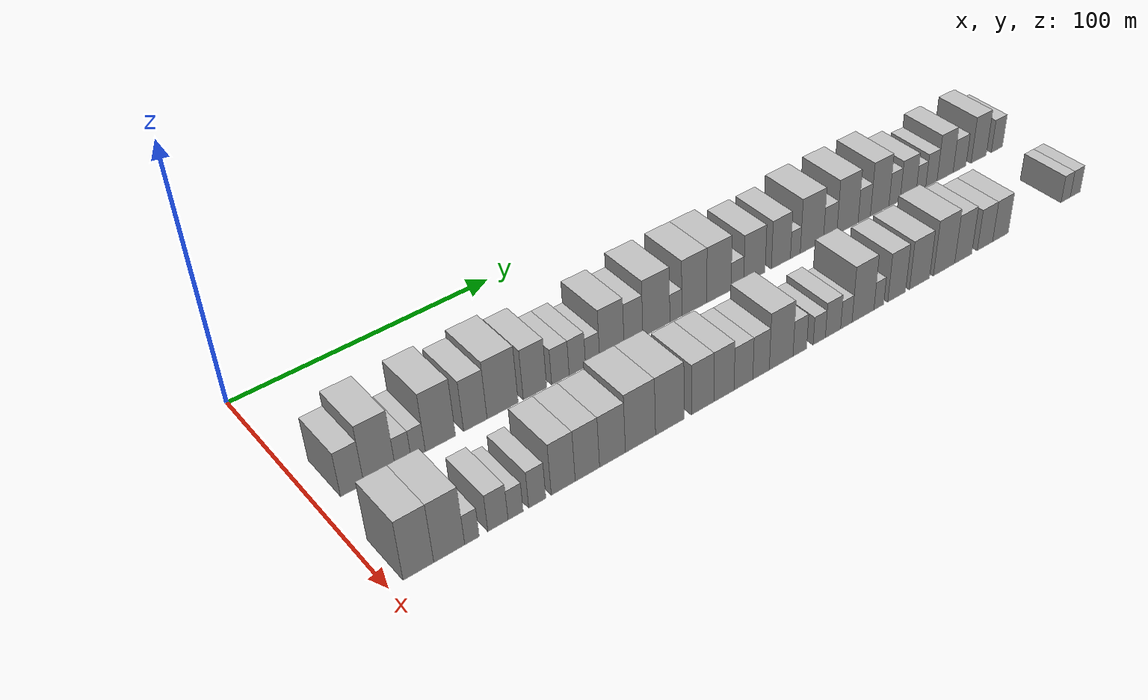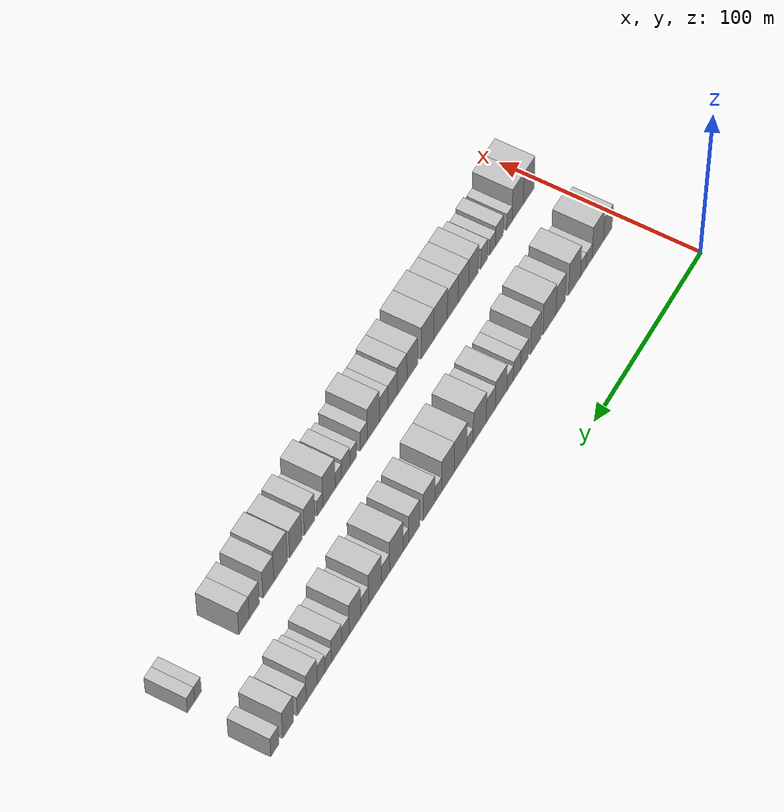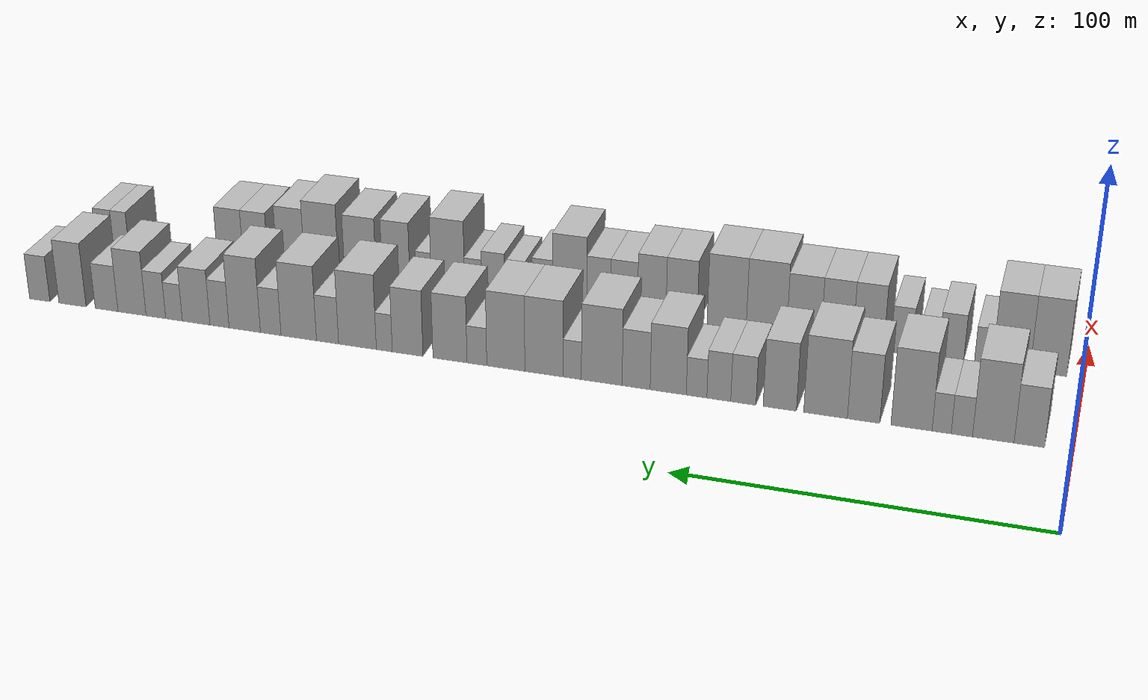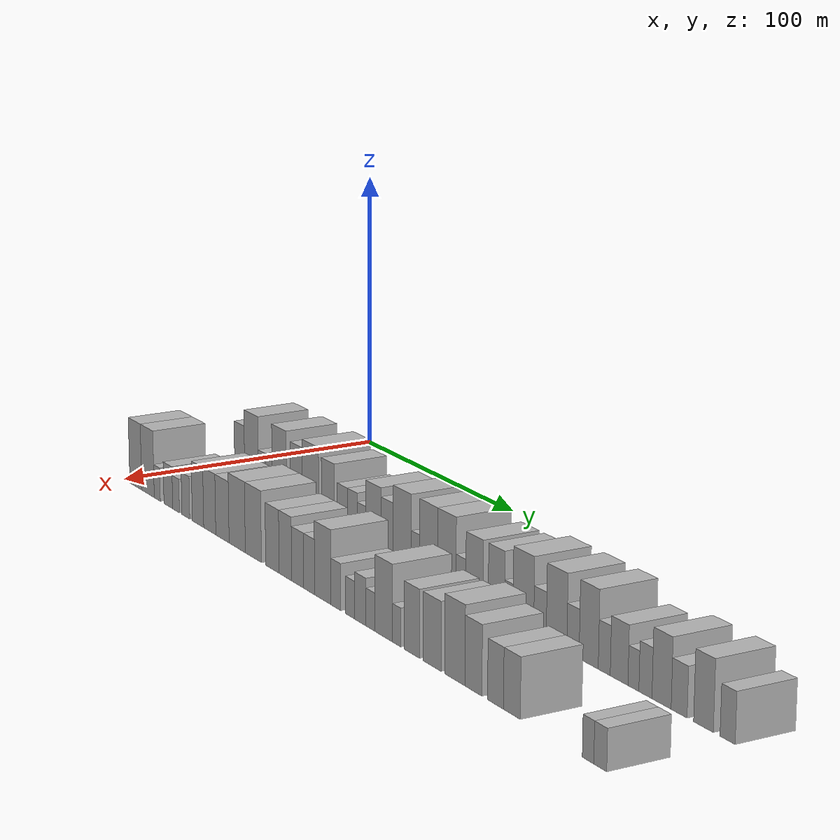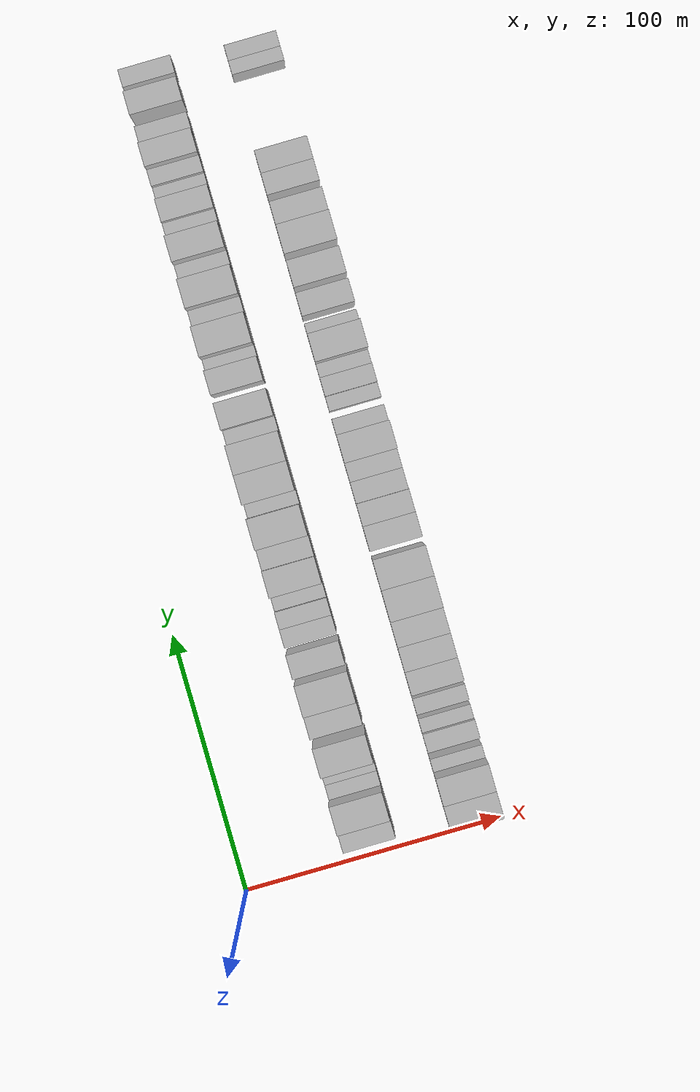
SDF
<sdf version="1.6">
 <world name="default">
  <model name="building_35">
   <static>1</static>
   <pose>50.0000 11.3959 0 0.000000 0.000000 0.000000</pose>
   <link name="link">
    <pose>0 0 9.00 0 0 0</pose>
    <collision name="collision"><geometry><box><size>20.0000 8.0078 18.0000</size></box></geometry></collision>
    <visual name="visual">
     <cast_shadows>0</cast_shadows>
     <geometry><box><size>20.0000 8.0078 18.0000</size></box></geometry>
     <material>
      <script>
       <uri>model://HANNAS_wall/materials/scripts</uri>
       <uri>model://HANNAS_wall/materials/textures</uri>
       <name>vrc/HANNAS_wall</name>
      </script>
     </material>
    </visual>
   </link>
  </model>
  <model name="building_36">
   <static>1</static>
   <pose>50.0000 20.8704 0 0.000000 0.000000 0.000000</pose>
   <link name="link">
    <pose>0 0 12.00 0 0 0</pose>
    <collision name="collision"><geometry><box><size>20.0000 10.9411 24.0000</size></box></geometry></collision>
    <visual name="visual">
     <cast_shadows>0</cast_shadows>
     <geometry><box><size>20.0000 10.9411 24.0000</size></box></geometry>
     <material>
      <script>
       <uri>model://HANNAS_wall/materials/scripts</uri>
       <uri>model://HANNAS_wall/materials/textures</uri>
       <name>vrc/HANNAS_wall</name>
      </script>
     </material>
    </visual>
   </link>
  </model>
  <model name="building_37">
   <static>1</static>
   <pose>50.0000 29.1648 0 0.000000 0.000000 0.000000</pose>
   <link name="link">
    <pose>0 0 6.00 0 0 0</pose>
    <collision name="collision"><geometry><box><size>20.0000 5.6477 12.0000</size></box></geometry></collision>
    <visual name="visual">
     <cast_shadows>0</cast_shadows>
     <geometry><box><size>20.0000 5.6477 12.0000</size></box></geometry>
     <material>
      <script>
       <uri>model://HANNAS_wall/materials/scripts</uri>
       <uri>model://HANNAS_wall/materials/textures</uri>
       <name>vrc/HANNAS_wall</name>
      </script>
     </material>
    </visual>
   </link>
  </model>
  <model name="building_38">
   <static>1</static>
   <pose>50.0000 34.5339 0 0.000000 0.000000 0.000000</pose>
   <link name="link">
    <pose>0 0 6.00 0 0 0</pose>
    <collision name="collision"><geometry><box><size>20.0000 5.0903 12.0000</size></box></geometry></collision>
    <visual name="visual">
     <cast_shadows>0</cast_shadows>
     <geometry><box><size>20.0000 5.0903 12.0000</size></box></geometry>
     <material>
      <script>
       <uri>model://HANNAS_wall/materials/scripts</uri>
       <uri>model://HANNAS_wall/materials/textures</uri>
       <name>vrc/HANNAS_wall</name>
      </script>
     </material>
    </visual>
   </link>
  </model>
  <model name="building_39">
   <static>1</static>
   <pose>50.0000 42.5966 0 0.000000 0.000000 0.000000</pose>
   <link name="link">
    <pose>0 0 12.00 0 0 0</pose>
    <collision name="collision"><geometry><box><size>20.0000 11.0351 24.0000</size></box></geometry></collision>
    <visual name="visual">
     <cast_shadows>0</cast_shadows>
     <geometry><box><size>20.0000 11.0351 24.0000</size></box></geometry>
     <material>
      <script>
       <uri>model://HANNAS_wall/materials/scripts</uri>
       <uri>model://HANNAS_wall/materials/textures</uri>
       <name>vrc/HANNAS_wall</name>
      </script>
     </material>
    </visual>
   </link>
  </model>
  <model name="building_40">
   <static>1</static>
   <pose>50.0000 55.5203 0 0.000000 0.000000 0.000000</pose>
   <link name="link">
    <pose>0 0 10.50 0 0 0</pose>
    <collision name="collision"><geometry><box><size>20.0000 8.8122 21.0000</size></box></geometry></collision>
    <visual name="visual">
     <cast_shadows>0</cast_shadows>
     <geometry><box><size>20.0000 8.8122 21.0000</size></box></geometry>
     <material>
      <script>
       <uri>model://HANNAS_wall/materials/scripts</uri>
       <uri>model://HANNAS_wall/materials/textures</uri>
       <name>vrc/HANNAS_wall</name>
      </script>
     </material>
    </visual>
   </link>
  </model>
  <model name="building_41">
   <static>1</static>
   <pose>50.0000 65.8986 0 0.000000 0.000000 0.000000</pose>
   <link name="link">
    <pose>0 0 12.00 0 0 0</pose>
    <collision name="collision"><geometry><box><size>20.0000 11.9445 24.0000</size></box></geometry></collision>
    <visual name="visual">
     <cast_shadows>0</cast_shadows>
     <geometry><box><size>20.0000 11.9445 24.0000</size></box></geometry>
     <material>
      <script>
       <uri>model://HANNAS_wall/materials/scripts</uri>
       <uri>model://HANNAS_wall/materials/textures</uri>
       <name>vrc/HANNAS_wall</name>
      </script>
     </material>
    </visual>
   </link>
  </model>
  <model name="building_42">
   <static>1</static>
   <pose>50.0000 78.4836 0 0.000000 0.000000 0.000000</pose>
   <link name="link">
    <pose>0 0 10.50 0 0 0</pose>
    <collision name="collision"><geometry><box><size>20.0000 9.2255 21.0000</size></box></geometry></collision>
    <visual name="visual">
     <cast_shadows>0</cast_shadows>
     <geometry><box><size>20.0000 9.2255 21.0000</size></box></geometry>
     <material>
      <script>
       <uri>model://HANNAS_wall/materials/scripts</uri>
       <uri>model://HANNAS_wall/materials/textures</uri>
       <name>vrc/HANNAS_wall</name>
      </script>
     </material>
    </visual>
   </link>
  </model>
  <model name="building_43">
   <static>1</static>
   <pose>50.0000 88.6178 0 0.000000 0.000000 0.000000</pose>
   <link name="link">
    <pose>0 0 7.50 0 0 0</pose>
    <collision name="collision"><geometry><box><size>20.0000 7.0429 15.0000</size></box></geometry></collision>
    <visual name="visual">
     <cast_shadows>0</cast_shadows>
     <geometry><box><size>20.0000 7.0429 15.0000</size></box></geometry>
     <material>
      <script>
       <uri>model://HANNAS_wall/materials/scripts</uri>
       <uri>model://HANNAS_wall/materials/textures</uri>
       <name>vrc/HANNAS_wall</name>
      </script>
     </material>
    </visual>
   </link>
  </model>
  <model name="building_44">
   <static>1</static>
   <pose>50.0000 95.4951 0 0.000000 0.000000 0.000000</pose>
   <link name="link">
    <pose>0 0 7.50 0 0 0</pose>
    <collision name="collision"><geometry><box><size>20.0000 6.7116 15.0000</size></box></geometry></collision>
    <visual name="visual">
     <cast_shadows>0</cast_shadows>
     <geometry><box><size>20.0000 6.7116 15.0000</size></box></geometry>
     <material>
      <script>
       <uri>model://HANNAS_wall/materials/scripts</uri>
       <uri>model://HANNAS_wall/materials/textures</uri>
       <name>vrc/HANNAS_wall</name>
      </script>
     </material>
    </visual>
   </link>
  </model>
  <model name="building_45">
   <static>1</static>
   <pose>50.0000 101.7632 0 0.000000 0.000000 0.000000</pose>
   <link name="link">
    <pose>0 0 6.00 0 0 0</pose>
    <collision name="collision"><geometry><box><size>20.0000 5.8247 12.0000</size></box></geometry></collision>
    <visual name="visual">
     <cast_shadows>0</cast_shadows>
     <geometry><box><size>20.0000 5.8247 12.0000</size></box></geometry>
     <material>
      <script>
       <uri>model://HANNAS_wall/materials/scripts</uri>
       <uri>model://HANNAS_wall/materials/textures</uri>
       <name>vrc/HANNAS_wall</name>
      </script>
     </material>
    </visual>
   </link>
  </model>
  <model name="building_46">
   <static>1</static>
   <pose>50.0000 109.8124 0 0.000000 0.000000 0.000000</pose>
   <link name="link">
    <pose>0 0 10.50 0 0 0</pose>
    <collision name="collision"><geometry><box><size>20.0000 10.2737 21.0000</size></box></geometry></collision>
    <visual name="visual">
     <cast_shadows>0</cast_shadows>
     <geometry><box><size>20.0000 10.2737 21.0000</size></box></geometry>
     <material>
      <script>
       <uri>model://HANNAS_wall/materials/scripts</uri>
       <uri>model://HANNAS_wall/materials/textures</uri>
       <name>vrc/HANNAS_wall</name>
      </script>
     </material>
    </visual>
   </link>
  </model>
  <model name="building_47">
   <static>1</static>
   <pose>50.0000 118.9649 0 0.000000 0.000000 0.000000</pose>
   <link name="link">
    <pose>0 0 9.00 0 0 0</pose>
    <collision name="collision"><geometry><box><size>20.0000 8.0313 18.0000</size></box></geometry></collision>
    <visual name="visual">
     <cast_shadows>0</cast_shadows>
     <geometry><box><size>20.0000 8.0313 18.0000</size></box></geometry>
     <material>
      <script>
       <uri>model://HANNAS_wall/materials/scripts</uri>
       <uri>model://HANNAS_wall/materials/textures</uri>
       <name>vrc/HANNAS_wall</name>
      </script>
     </material>
    </visual>
   </link>
  </model>
  <model name="building_48">
   <static>1</static>
   <pose>50.0000 128.8710 0 0.000000 0.000000 0.000000</pose>
   <link name="link">
    <pose>0 0 12.00 0 0 0</pose>
    <collision name="collision"><geometry><box><size>20.0000 11.7810 24.0000</size></box></geometry></collision>
    <visual name="visual">
     <cast_shadows>0</cast_shadows>
     <geometry><box><size>20.0000 11.7810 24.0000</size></box></geometry>
     <material>
      <script>
       <uri>model://HANNAS_wall/materials/scripts</uri>
       <uri>model://HANNAS_wall/materials/textures</uri>
       <name>vrc/HANNAS_wall</name>
      </script>
     </material>
    </visual>
   </link>
  </model>
  <model name="building_49">
   <static>1</static>
   <pose>50.0000 137.4100 0 0.000000 0.000000 0.000000</pose>
   <link name="link">
    <pose>0 0 6.00 0 0 0</pose>
    <collision name="collision"><geometry><box><size>20.0000 5.2969 12.0000</size></box></geometry></collision>
    <visual name="visual">
     <cast_shadows>0</cast_shadows>
     <geometry><box><size>20.0000 5.2969 12.0000</size></box></geometry>
     <material>
      <script>
       <uri>model://HANNAS_wall/materials/scripts</uri>
       <uri>model://HANNAS_wall/materials/textures</uri>
       <name>vrc/HANNAS_wall</name>
      </script>
     </material>
    </visual>
   </link>
  </model>
  <model name="building_50">
   <static>1</static>
   <pose>50.0000 145.6631 0 0.000000 0.000000 0.000000</pose>
   <link name="link">
    <pose>0 0 12.00 0 0 0</pose>
    <collision name="collision"><geometry><box><size>20.0000 11.2093 24.0000</size></box></geometry></collision>
    <visual name="visual">
     <cast_shadows>0</cast_shadows>
     <geometry><box><size>20.0000 11.2093 24.0000</size></box></geometry>
     <material>
      <script>
       <uri>model://HANNAS_wall/materials/scripts</uri>
       <uri>model://HANNAS_wall/materials/textures</uri>
       <name>vrc/HANNAS_wall</name>
      </script>
     </material>
    </visual>
   </link>
  </model>
  <model name="building_51">
   <static>1</static>
   <pose>50.0000 156.8992 0 0.000000 0.000000 0.000000</pose>
   <link name="link">
    <pose>0 0 12.00 0 0 0</pose>
    <collision name="collision"><geometry><box><size>20.0000 11.2628 24.0000</size></box></geometry></collision>
    <visual name="visual">
     <cast_shadows>0</cast_shadows>
     <geometry><box><size>20.0000 11.2628 24.0000</size></box></geometry>
     <material>
      <script>
       <uri>model://HANNAS_wall/materials/scripts</uri>
       <uri>model://HANNAS_wall/materials/textures</uri>
       <name>vrc/HANNAS_wall</name>
      </script>
     </material>
    </visual>
   </link>
  </model>
  <model name="building_52">
   <static>1</static>
   <pose>50.0000 165.4799 0 0.000000 0.000000 0.000000</pose>
   <link name="link">
    <pose>0 0 6.00 0 0 0</pose>
    <collision name="collision"><geometry><box><size>20.0000 5.8987 12.0000</size></box></geometry></collision>
    <visual name="visual">
     <cast_shadows>0</cast_shadows>
     <geometry><box><size>20.0000 5.8987 12.0000</size></box></geometry>
     <material>
      <script>
       <uri>model://HANNAS_wall/materials/scripts</uri>
       <uri>model://HANNAS_wall/materials/textures</uri>
       <name>vrc/HANNAS_wall</name>
      </script>
     </material>
    </visual>
   </link>
  </model>
  <model name="building_53">
   <static>1</static>
   <pose>50.0000 173.5300 0 0.000000 0.000000 0.000000</pose>
   <link name="link">
    <pose>0 0 10.50 0 0 0</pose>
    <collision name="collision"><geometry><box><size>20.0000 10.2016 21.0000</size></box></geometry></collision>
    <visual name="visual">
     <cast_shadows>0</cast_shadows>
     <geometry><box><size>20.0000 10.2016 21.0000</size></box></geometry>
     <material>
      <script>
       <uri>model://HANNAS_wall/materials/scripts</uri>
       <uri>model://HANNAS_wall/materials/textures</uri>
       <name>vrc/HANNAS_wall</name>
      </script>
     </material>
    </visual>
   </link>
  </model>
  <model name="building_54">
   <static>1</static>
   <pose>50.0000 186.2834 0 0.000000 0.000000 0.000000</pose>
   <link name="link">
    <pose>0 0 10.50 0 0 0</pose>
    <collision name="collision"><geometry><box><size>20.0000 9.3051 21.0000</size></box></geometry></collision>
    <visual name="visual">
     <cast_shadows>0</cast_shadows>
     <geometry><box><size>20.0000 9.3051 21.0000</size></box></geometry>
     <material>
      <script>
       <uri>model://HANNAS_wall/materials/scripts</uri>
       <uri>model://HANNAS_wall/materials/textures</uri>
       <name>vrc/HANNAS_wall</name>
      </script>
     </material>
    </visual>
   </link>
  </model>
  <model name="building_55">
   <static>1</static>
   <pose>50.0000 193.3706 0 0.000000 0.000000 0.000000</pose>
   <link name="link">
    <pose>0 0 6.00 0 0 0</pose>
    <collision name="collision"><geometry><box><size>20.0000 4.8694 12.0000</size></box></geometry></collision>
    <visual name="visual">
     <cast_shadows>0</cast_shadows>
     <geometry><box><size>20.0000 4.8694 12.0000</size></box></geometry>
     <material>
      <script>
       <uri>model://HANNAS_wall/materials/scripts</uri>
       <uri>model://HANNAS_wall/materials/textures</uri>
       <name>vrc/HANNAS_wall</name>
      </script>
     </material>
    </visual>
   </link>
  </model>
  <model name="building_56">
   <static>1</static>
   <pose>50.0000 201.5925 0 0.000000 0.000000 0.000000</pose>
   <link name="link">
    <pose>0 0 12.00 0 0 0</pose>
    <collision name="collision"><geometry><box><size>20.0000 11.5745 24.0000</size></box></geometry></collision>
    <visual name="visual">
     <cast_shadows>0</cast_shadows>
     <geometry><box><size>20.0000 11.5745 24.0000</size></box></geometry>
     <material>
      <script>
       <uri>model://HANNAS_wall/materials/scripts</uri>
       <uri>model://HANNAS_wall/materials/textures</uri>
       <name>vrc/HANNAS_wall</name>
      </script>
     </material>
    </visual>
   </link>
  </model>
  <model name="building_57">
   <static>1</static>
   <pose>50.0000 210.8056 0 0.000000 0.000000 0.000000</pose>
   <link name="link">
    <pose>0 0 7.50 0 0 0</pose>
    <collision name="collision"><geometry><box><size>20.0000 6.8518 15.0000</size></box></geometry></collision>
    <visual name="visual">
     <cast_shadows>0</cast_shadows>
     <geometry><box><size>20.0000 6.8518 15.0000</size></box></geometry>
     <material>
      <script>
       <uri>model://HANNAS_wall/materials/scripts</uri>
       <uri>model://HANNAS_wall/materials/textures</uri>
       <name>vrc/HANNAS_wall</name>
      </script>
     </material>
    </visual>
   </link>
  </model>
  <model name="building_58">
   <static>1</static>
   <pose>50.0000 219.7498 0 0.000000 0.000000 0.000000</pose>
   <link name="link">
    <pose>0 0 12.00 0 0 0</pose>
    <collision name="collision"><geometry><box><size>20.0000 11.0365 24.0000</size></box></geometry></collision>
    <visual name="visual">
     <cast_shadows>0</cast_shadows>
     <geometry><box><size>20.0000 11.0365 24.0000</size></box></geometry>
     <material>
      <script>
       <uri>model://HANNAS_wall/materials/scripts</uri>
       <uri>model://HANNAS_wall/materials/textures</uri>
       <name>vrc/HANNAS_wall</name>
      </script>
     </material>
    </visual>
   </link>
  </model>
  <model name="building_59">
   <static>1</static>
   <pose>50.0000 228.5095 0 0.000000 0.000000 0.000000</pose>
   <link name="link">
    <pose>0 0 7.50 0 0 0</pose>
    <collision name="collision"><geometry><box><size>20.0000 6.4829 15.0000</size></box></geometry></collision>
    <visual name="visual">
     <cast_shadows>0</cast_shadows>
     <geometry><box><size>20.0000 6.4829 15.0000</size></box></geometry>
     <material>
      <script>
       <uri>model://HANNAS_wall/materials/scripts</uri>
       <uri>model://HANNAS_wall/materials/textures</uri>
       <name>vrc/HANNAS_wall</name>
      </script>
     </material>
    </visual>
   </link>
  </model>
  <model name="building_60">
   <static>1</static>
   <pose>50.0000 236.6931 0 0.000000 0.000000 0.000000</pose>
   <link name="link">
    <pose>0 0 12.00 0 0 0</pose>
    <collision name="collision"><geometry><box><size>20.0000 9.8843 24.0000</size></box></geometry></collision>
    <visual name="visual">
     <cast_shadows>0</cast_shadows>
     <geometry><box><size>20.0000 9.8843 24.0000</size></box></geometry>
     <material>
      <script>
       <uri>model://HANNAS_wall/materials/scripts</uri>
       <uri>model://HANNAS_wall/materials/textures</uri>
       <name>vrc/HANNAS_wall</name>
      </script>
     </material>
    </visual>
   </link>
  </model>
  <model name="building_61">
   <static>1</static>
   <pose>50.0000 244.6765 0 0.000000 0.000000 0.000000</pose>
   <link name="link">
    <pose>0 0 7.50 0 0 0</pose>
    <collision name="collision"><geometry><box><size>20.0000 6.0823 15.0000</size></box></geometry></collision>
    <visual name="visual">
     <cast_shadows>0</cast_shadows>
     <geometry><box><size>20.0000 6.0823 15.0000</size></box></geometry>
     <material>
      <script>
       <uri>model://HANNAS_wall/materials/scripts</uri>
       <uri>model://HANNAS_wall/materials/textures</uri>
       <name>vrc/HANNAS_wall</name>
      </script>
     </material>
    </visual>
   </link>
  </model>
  <model name="building_62">
   <static>1</static>
   <pose>50.0000 252.1347 0 0.000000 0.000000 0.000000</pose>
   <link name="link">
    <pose>0 0 9.00 0 0 0</pose>
    <collision name="collision"><geometry><box><size>20.0000 8.8340 18.0000</size></box></geometry></collision>
    <visual name="visual">
     <cast_shadows>0</cast_shadows>
     <geometry><box><size>20.0000 8.8340 18.0000</size></box></geometry>
     <material>
      <script>
       <uri>model://HANNAS_wall/materials/scripts</uri>
       <uri>model://HANNAS_wall/materials/textures</uri>
       <name>vrc/HANNAS_wall</name>
      </script>
     </material>
    </visual>
   </link>
  </model>
  <model name="building_63">
   <static>1</static>
   <pose>50.0000 259.2328 0 0.000000 0.000000 0.000000</pose>
   <link name="link">
    <pose>0 0 6.00 0 0 0</pose>
    <collision name="collision"><geometry><box><size>20.0000 5.3622 12.0000</size></box></geometry></collision>
    <visual name="visual">
     <cast_shadows>0</cast_shadows>
     <geometry><box><size>20.0000 5.3622 12.0000</size></box></geometry>
     <material>
      <script>
       <uri>model://HANNAS_wall/materials/scripts</uri>
       <uri>model://HANNAS_wall/materials/textures</uri>
       <name>vrc/HANNAS_wall</name>
      </script>
     </material>
    </visual>
   </link>
  </model>
  <model name="building_64">
   <static>1</static>
   <pose>50.0000 265.0786 0 0.000000 0.000000 0.000000</pose>
   <link name="link">
    <pose>0 0 7.50 0 0 0</pose>
    <collision name="collision"><geometry><box><size>20.0000 6.3295 15.0000</size></box></geometry></collision>
    <visual name="visual">
     <cast_shadows>0</cast_shadows>
     <geometry><box><size>20.0000 6.3295 15.0000</size></box></geometry>
     <material>
      <script>
       <uri>model://HANNAS_wall/materials/scripts</uri>
       <uri>model://HANNAS_wall/materials/textures</uri>
       <name>vrc/HANNAS_wall</name>
      </script>
     </material>
    </visual>
   </link>
  </model>
  <model name="building_65">
   <static>1</static>
   <pose>50.0000 272.8066 0 0.000000 0.000000 0.000000</pose>
   <link name="link">
    <pose>0 0 10.50 0 0 0</pose>
    <collision name="collision"><geometry><box><size>20.0000 9.1265 21.0000</size></box></geometry></collision>
    <visual name="visual">
     <cast_shadows>0</cast_shadows>
     <geometry><box><size>20.0000 9.1265 21.0000</size></box></geometry>
     <material>
      <script>
       <uri>model://HANNAS_wall/materials/scripts</uri>
       <uri>model://HANNAS_wall/materials/textures</uri>
       <name>vrc/HANNAS_wall</name>
      </script>
     </material>
    </visual>
   </link>
  </model>
  <model name="building_66">
   <static>1</static>
   <pose>50.0000 281.0966 0 0.000000 0.000000 0.000000</pose>
   <link name="link">
    <pose>0 0 7.50 0 0 0</pose>
    <collision name="collision"><geometry><box><size>20.0000 7.4534 15.0000</size></box></geometry></collision>
    <visual name="visual">
     <cast_shadows>0</cast_shadows>
     <geometry><box><size>20.0000 7.4534 15.0000</size></box></geometry>
     <material>
      <script>
       <uri>model://HANNAS_wall/materials/scripts</uri>
       <uri>model://HANNAS_wall/materials/textures</uri>
       <name>vrc/HANNAS_wall</name>
      </script>
     </material>
    </visual>
   </link>
  </model>
  <model name="building_67">
   <static>1</static>
   <pose>50.0000 292.3017 0 0.000000 0.000000 0.000000</pose>
   <link name="link">
    <pose>0 0 10.50 0 0 0</pose>
    <collision name="collision"><geometry><box><size>20.0000 8.9567 21.0000</size></box></geometry></collision>
    <visual name="visual">
     <cast_shadows>0</cast_shadows>
     <geometry><box><size>20.0000 8.9567 21.0000</size></box></geometry>
     <material>
      <script>
       <uri>model://HANNAS_wall/materials/scripts</uri>
       <uri>model://HANNAS_wall/materials/textures</uri>
       <name>vrc/HANNAS_wall</name>
      </script>
     </material>
    </visual>
   </link>
  </model>
  <model name="building_68">
   <static>1</static>
   <pose>50.0000 303.1446 0 0.000000 0.000000 0.000000</pose>
   <link name="link">
    <pose>0 0 7.50 0 0 0</pose>
    <collision name="collision"><geometry><box><size>20.0000 6.7292 15.0000</size></box></geometry></collision>
    <visual name="visual">
     <cast_shadows>0</cast_shadows>
     <geometry><box><size>20.0000 6.7292 15.0000</size></box></geometry>
     <material>
      <script>
       <uri>model://HANNAS_wall/materials/scripts</uri>
       <uri>model://HANNAS_wall/materials/textures</uri>
       <name>vrc/HANNAS_wall</name>
      </script>
     </material>
    </visual>
   </link>
  </model>
  <model name="building_98">
   <static>1</static>
   <pose>90.0000 9.8645 0 0.000000 0.000000 0.000000</pose>
   <link name="link">
    <pose>0 0 12.00 0 0 0</pose>
    <collision name="collision"><geometry><box><size>20.0000 10.1987 24.0000</size></box></geometry></collision>
    <visual name="visual">
     <cast_shadows>0</cast_shadows>
     <geometry><box><size>20.0000 10.1987 24.0000</size></box></geometry>
     <material>
      <script>
       <uri>model://HANNAS_wall/materials/scripts</uri>
       <uri>model://HANNAS_wall/materials/textures</uri>
       <name>vrc/HANNAS_wall</name>
      </script>
     </material>
    </visual>
   </link>
  </model>
  <model name="building_99">
   <static>1</static>
   <pose>90.0000 20.2085 0 0.000000 0.000000 0.000000</pose>
   <link name="link">
    <pose>0 0 12.00 0 0 0</pose>
    <collision name="collision"><geometry><box><size>20.0000 10.4892 24.0000</size></box></geometry></collision>
    <visual name="visual">
     <cast_shadows>0</cast_shadows>
     <geometry><box><size>20.0000 10.4892 24.0000</size></box></geometry>
     <material>
      <script>
       <uri>model://HANNAS_wall/materials/scripts</uri>
       <uri>model://HANNAS_wall/materials/textures</uri>
       <name>vrc/HANNAS_wall</name>
      </script>
     </material>
    </visual>
   </link>
  </model>
  <model name="building_100">
   <static>1</static>
   <pose>90.0000 27.9639 0 0.000000 0.000000 0.000000</pose>
   <link name="link">
    <pose>0 0 6.00 0 0 0</pose>
    <collision name="collision"><geometry><box><size>20.0000 5.0216 12.0000</size></box></geometry></collision>
    <visual name="visual">
     <cast_shadows>0</cast_shadows>
     <geometry><box><size>20.0000 5.0216 12.0000</size></box></geometry>
     <material>
      <script>
       <uri>model://HANNAS_wall/materials/scripts</uri>
       <uri>model://HANNAS_wall/materials/textures</uri>
       <name>vrc/HANNAS_wall</name>
      </script>
     </material>
    </visual>
   </link>
  </model>
  <model name="building_101">
   <static>1</static>
   <pose>90.0000 37.0411 0 0.000000 0.000000 0.000000</pose>
   <link name="link">
    <pose>0 0 7.50 0 0 0</pose>
    <collision name="collision"><geometry><box><size>20.0000 7.1328 15.0000</size></box></geometry></collision>
    <visual name="visual">
     <cast_shadows>0</cast_shadows>
     <geometry><box><size>20.0000 7.1328 15.0000</size></box></geometry>
     <material>
      <script>
       <uri>model://HANNAS_wall/materials/scripts</uri>
       <uri>model://HANNAS_wall/materials/textures</uri>
       <name>vrc/HANNAS_wall</name>
      </script>
     </material>
    </visual>
   </link>
  </model>
  <model name="building_102">
   <static>1</static>
   <pose>90.0000 43.3104 0 0.000000 0.000000 0.000000</pose>
   <link name="link">
    <pose>0 0 6.00 0 0 0</pose>
    <collision name="collision"><geometry><box><size>20.0000 5.4059 12.0000</size></box></geometry></collision>
    <visual name="visual">
     <cast_shadows>0</cast_shadows>
     <geometry><box><size>20.0000 5.4059 12.0000</size></box></geometry>
     <material>
      <script>
       <uri>model://HANNAS_wall/materials/scripts</uri>
       <uri>model://HANNAS_wall/materials/textures</uri>
       <name>vrc/HANNAS_wall</name>
      </script>
     </material>
    </visual>
   </link>
  </model>
  <model name="building_103">
   <static>1</static>
   <pose>90.0000 51.1211 0 0.000000 0.000000 0.000000</pose>
   <link name="link">
    <pose>0 0 7.50 0 0 0</pose>
    <collision name="collision"><geometry><box><size>20.0000 6.2157 15.0000</size></box></geometry></collision>
    <visual name="visual">
     <cast_shadows>0</cast_shadows>
     <geometry><box><size>20.0000 6.2157 15.0000</size></box></geometry>
     <material>
      <script>
       <uri>model://HANNAS_wall/materials/scripts</uri>
       <uri>model://HANNAS_wall/materials/textures</uri>
       <name>vrc/HANNAS_wall</name>
      </script>
     </material>
    </visual>
   </link>
  </model>
  <model name="building_104">
   <static>1</static>
   <pose>90.0000 60.6790 0 0.000000 0.000000 0.000000</pose>
   <link name="link">
    <pose>0 0 10.50 0 0 0</pose>
    <collision name="collision"><geometry><box><size>20.0000 8.9001 21.0000</size></box></geometry></collision>
    <visual name="visual">
     <cast_shadows>0</cast_shadows>
     <geometry><box><size>20.0000 8.9001 21.0000</size></box></geometry>
     <material>
      <script>
       <uri>model://HANNAS_wall/materials/scripts</uri>
       <uri>model://HANNAS_wall/materials/textures</uri>
       <name>vrc/HANNAS_wall</name>
      </script>
     </material>
    </visual>
   </link>
  </model>
  <model name="building_105">
   <static>1</static>
   <pose>90.0000 69.7520 0 0.000000 0.000000 0.000000</pose>
   <link name="link">
    <pose>0 0 10.50 0 0 0</pose>
    <collision name="collision"><geometry><box><size>20.0000 9.2458 21.0000</size></box></geometry></collision>
    <visual name="visual">
     <cast_shadows>0</cast_shadows>
     <geometry><box><size>20.0000 9.2458 21.0000</size></box></geometry>
     <material>
      <script>
       <uri>model://HANNAS_wall/materials/scripts</uri>
       <uri>model://HANNAS_wall/materials/textures</uri>
       <name>vrc/HANNAS_wall</name>
      </script>
     </material>
    </visual>
   </link>
  </model>
  <model name="building_106">
   <static>1</static>
   <pose>90.0000 79.3833 0 0.000000 0.000000 0.000000</pose>
   <link name="link">
    <pose>0 0 10.50 0 0 0</pose>
    <collision name="collision"><geometry><box><size>20.0000 10.0169 21.0000</size></box></geometry></collision>
    <visual name="visual">
     <cast_shadows>0</cast_shadows>
     <geometry><box><size>20.0000 10.0169 21.0000</size></box></geometry>
     <material>
      <script>
       <uri>model://HANNAS_wall/materials/scripts</uri>
       <uri>model://HANNAS_wall/materials/textures</uri>
       <name>vrc/HANNAS_wall</name>
      </script>
     </material>
    </visual>
   </link>
  </model>
  <model name="building_107">
   <static>1</static>
   <pose>90.0000 90.3636 0 0.000000 0.000000 0.000000</pose>
   <link name="link">
    <pose>0 0 12.00 0 0 0</pose>
    <collision name="collision"><geometry><box><size>20.0000 11.9438 24.0000</size></box></geometry></collision>
    <visual name="visual">
     <cast_shadows>0</cast_shadows>
     <geometry><box><size>20.0000 11.9438 24.0000</size></box></geometry>
     <material>
      <script>
       <uri>model://HANNAS_wall/materials/scripts</uri>
       <uri>model://HANNAS_wall/materials/textures</uri>
       <name>vrc/HANNAS_wall</name>
      </script>
     </material>
    </visual>
   </link>
  </model>
  <model name="building_108">
   <static>1</static>
   <pose>90.0000 102.1360 0 0.000000 0.000000 0.000000</pose>
   <link name="link">
    <pose>0 0 12.00 0 0 0</pose>
    <collision name="collision"><geometry><box><size>20.0000 11.6009 24.0000</size></box></geometry></collision>
    <visual name="visual">
     <cast_shadows>0</cast_shadows>
     <geometry><box><size>20.0000 11.6009 24.0000</size></box></geometry>
     <material>
      <script>
       <uri>model://HANNAS_wall/materials/scripts</uri>
       <uri>model://HANNAS_wall/materials/textures</uri>
       <name>vrc/HANNAS_wall</name>
      </script>
     </material>
    </visual>
   </link>
  </model>
  <model name="building_109">
   <static>1</static>
   <pose>90.0000 115.6377 0 0.000000 0.000000 0.000000</pose>
   <link name="link">
    <pose>0 0 10.50 0 0 0</pose>
    <collision name="collision"><geometry><box><size>20.0000 9.4024 21.0000</size></box></geometry></collision>
    <visual name="visual">
     <cast_shadows>0</cast_shadows>
     <geometry><box><size>20.0000 9.4024 21.0000</size></box></geometry>
     <material>
      <script>
       <uri>model://HANNAS_wall/materials/scripts</uri>
       <uri>model://HANNAS_wall/materials/textures</uri>
       <name>vrc/HANNAS_wall</name>
      </script>
     </material>
    </visual>
   </link>
  </model>
  <model name="building_110">
   <static>1</static>
   <pose>90.0000 124.6527 0 0.000000 0.000000 0.000000</pose>
   <link name="link">
    <pose>0 0 10.50 0 0 0</pose>
    <collision name="collision"><geometry><box><size>20.0000 8.6277 21.0000</size></box></geometry></collision>
    <visual name="visual">
     <cast_shadows>0</cast_shadows>
     <geometry><box><size>20.0000 8.6277 21.0000</size></box></geometry>
     <material>
      <script>
       <uri>model://HANNAS_wall/materials/scripts</uri>
       <uri>model://HANNAS_wall/materials/textures</uri>
       <name>vrc/HANNAS_wall</name>
      </script>
     </material>
    </visual>
   </link>
  </model>
  <model name="building_111">
   <static>1</static>
   <pose>90.0000 133.0373 0 0.000000 0.000000 0.000000</pose>
   <link name="link">
    <pose>0 0 9.00 0 0 0</pose>
    <collision name="collision"><geometry><box><size>20.0000 8.1415 18.0000</size></box></geometry></collision>
    <visual name="visual">
     <cast_shadows>0</cast_shadows>
     <geometry><box><size>20.0000 8.1415 18.0000</size></box></geometry>
     <material>
      <script>
       <uri>model://HANNAS_wall/materials/scripts</uri>
       <uri>model://HANNAS_wall/materials/textures</uri>
       <name>vrc/HANNAS_wall</name>
      </script>
     </material>
    </visual>
   </link>
  </model>
  <model name="building_112">
   <static>1</static>
   <pose>90.0000 140.7481 0 0.000000 0.000000 0.000000</pose>
   <link name="link">
    <pose>0 0 9.00 0 0 0</pose>
    <collision name="collision"><geometry><box><size>20.0000 7.2801 18.0000</size></box></geometry></collision>
    <visual name="visual">
     <cast_shadows>0</cast_shadows>
     <geometry><box><size>20.0000 7.2801 18.0000</size></box></geometry>
     <material>
      <script>
       <uri>model://HANNAS_wall/materials/scripts</uri>
       <uri>model://HANNAS_wall/materials/textures</uri>
       <name>vrc/HANNAS_wall</name>
      </script>
     </material>
    </visual>
   </link>
  </model>
  <model name="building_113">
   <static>1</static>
   <pose>90.0000 149.7145 0 0.000000 0.000000 0.000000</pose>
   <link name="link">
    <pose>0 0 12.00 0 0 0</pose>
    <collision name="collision"><geometry><box><size>20.0000 10.6526 24.0000</size></box></geometry></collision>
    <visual name="visual">
     <cast_shadows>0</cast_shadows>
     <geometry><box><size>20.0000 10.6526 24.0000</size></box></geometry>
     <material>
      <script>
       <uri>model://HANNAS_wall/materials/scripts</uri>
       <uri>model://HANNAS_wall/materials/textures</uri>
       <name>vrc/HANNAS_wall</name>
      </script>
     </material>
    </visual>
   </link>
  </model>
  <model name="building_114">
   <static>1</static>
   <pose>90.0000 158.1637 0 0.000000 0.000000 0.000000</pose>
   <link name="link">
    <pose>0 0 7.50 0 0 0</pose>
    <collision name="collision"><geometry><box><size>20.0000 6.2457 15.0000</size></box></geometry></collision>
    <visual name="visual">
     <cast_shadows>0</cast_shadows>
     <geometry><box><size>20.0000 6.2457 15.0000</size></box></geometry>
     <material>
      <script>
       <uri>model://HANNAS_wall/materials/scripts</uri>
       <uri>model://HANNAS_wall/materials/textures</uri>
       <name>vrc/HANNAS_wall</name>
      </script>
     </material>
    </visual>
   </link>
  </model>
  <model name="building_115">
   <static>1</static>
   <pose>90.0000 167.1207 0 0.000000 0.000000 0.000000</pose>
   <link name="link">
    <pose>0 0 6.00 0 0 0</pose>
    <collision name="collision"><geometry><box><size>20.0000 5.6684 12.0000</size></box></geometry></collision>
    <visual name="visual">
     <cast_shadows>0</cast_shadows>
     <geometry><box><size>20.0000 5.6684 12.0000</size></box></geometry>
     <material>
      <script>
       <uri>model://HANNAS_wall/materials/scripts</uri>
       <uri>model://HANNAS_wall/materials/textures</uri>
       <name>vrc/HANNAS_wall</name>
      </script>
     </material>
    </visual>
   </link>
  </model>
  <model name="building_116">
   <static>1</static>
   <pose>90.0000 173.5468 0 0.000000 0.000000 0.000000</pose>
   <link name="link">
    <pose>0 0 7.50 0 0 0</pose>
    <collision name="collision"><geometry><box><size>20.0000 7.1836 15.0000</size></box></geometry></collision>
    <visual name="visual">
     <cast_shadows>0</cast_shadows>
     <geometry><box><size>20.0000 7.1836 15.0000</size></box></geometry>
     <material>
      <script>
       <uri>model://HANNAS_wall/materials/scripts</uri>
       <uri>model://HANNAS_wall/materials/textures</uri>
       <name>vrc/HANNAS_wall</name>
      </script>
     </material>
    </visual>
   </link>
  </model>
  <model name="building_117">
   <static>1</static>
   <pose>90.0000 179.8608 0 0.000000 0.000000 0.000000</pose>
   <link name="link">
    <pose>0 0 6.00 0 0 0</pose>
    <collision name="collision"><geometry><box><size>20.0000 5.4444 12.0000</size></box></geometry></collision>
    <visual name="visual">
     <cast_shadows>0</cast_shadows>
     <geometry><box><size>20.0000 5.4444 12.0000</size></box></geometry>
     <material>
      <script>
       <uri>model://HANNAS_wall/materials/scripts</uri>
       <uri>model://HANNAS_wall/materials/textures</uri>
       <name>vrc/HANNAS_wall</name>
      </script>
     </material>
    </visual>
   </link>
  </model>
  <model name="building_118">
   <static>1</static>
   <pose>90.0000 187.8919 0 0.000000 0.000000 0.000000</pose>
   <link name="link">
    <pose>0 0 12.00 0 0 0</pose>
    <collision name="collision"><geometry><box><size>20.0000 10.6178 24.0000</size></box></geometry></collision>
    <visual name="visual">
     <cast_shadows>0</cast_shadows>
     <geometry><box><size>20.0000 10.6178 24.0000</size></box></geometry>
     <material>
      <script>
       <uri>model://HANNAS_wall/materials/scripts</uri>
       <uri>model://HANNAS_wall/materials/textures</uri>
       <name>vrc/HANNAS_wall</name>
      </script>
     </material>
    </visual>
   </link>
  </model>
  <model name="building_119">
   <static>1</static>
   <pose>90.0000 195.6225 0 0.000000 0.000000 0.000000</pose>
   <link name="link">
    <pose>0 0 6.00 0 0 0</pose>
    <collision name="collision"><geometry><box><size>20.0000 4.8434 12.0000</size></box></geometry></collision>
    <visual name="visual">
     <cast_shadows>0</cast_shadows>
     <geometry><box><size>20.0000 4.8434 12.0000</size></box></geometry>
     <material>
      <script>
       <uri>model://HANNAS_wall/materials/scripts</uri>
       <uri>model://HANNAS_wall/materials/textures</uri>
       <name>vrc/HANNAS_wall</name>
      </script>
     </material>
    </visual>
   </link>
  </model>
  <model name="building_120">
   <static>1</static>
   <pose>90.0000 204.4870 0 0.000000 0.000000 0.000000</pose>
   <link name="link">
    <pose>0 0 10.50 0 0 0</pose>
    <collision name="collision"><geometry><box><size>20.0000 8.8857 21.0000</size></box></geometry></collision>
    <visual name="visual">
     <cast_shadows>0</cast_shadows>
     <geometry><box><size>20.0000 8.8857 21.0000</size></box></geometry>
     <material>
      <script>
       <uri>model://HANNAS_wall/materials/scripts</uri>
       <uri>model://HANNAS_wall/materials/textures</uri>
       <name>vrc/HANNAS_wall</name>
      </script>
     </material>
    </visual>
   </link>
  </model>
  <model name="building_121">
   <static>1</static>
   <pose>90.0000 216.0641 0 0.000000 0.000000 0.000000</pose>
   <link name="link">
    <pose>0 0 10.50 0 0 0</pose>
    <collision name="collision"><geometry><box><size>20.0000 10.2683 21.0000</size></box></geometry></collision>
    <visual name="visual">
     <cast_shadows>0</cast_shadows>
     <geometry><box><size>20.0000 10.2683 21.0000</size></box></geometry>
     <material>
      <script>
       <uri>model://HANNAS_wall/materials/scripts</uri>
       <uri>model://HANNAS_wall/materials/textures</uri>
       <name>vrc/HANNAS_wall</name>
      </script>
     </material>
    </visual>
   </link>
  </model>
  <model name="building_122">
   <static>1</static>
   <pose>90.0000 228.7787 0 0.000000 0.000000 0.000000</pose>
   <link name="link">
    <pose>0 0 12.00 0 0 0</pose>
    <collision name="collision"><geometry><box><size>20.0000 11.1608 24.0000</size></box></geometry></collision>
    <visual name="visual">
     <cast_shadows>0</cast_shadows>
     <geometry><box><size>20.0000 11.1608 24.0000</size></box></geometry>
     <material>
      <script>
       <uri>model://HANNAS_wall/materials/scripts</uri>
       <uri>model://HANNAS_wall/materials/textures</uri>
       <name>vrc/HANNAS_wall</name>
      </script>
     </material>
    </visual>
   </link>
  </model>
  <model name="building_123">
   <static>1</static>
   <pose>90.0000 238.9190 0 0.000000 0.000000 0.000000</pose>
   <link name="link">
    <pose>0 0 10.50 0 0 0</pose>
    <collision name="collision"><geometry><box><size>20.0000 9.1199 21.0000</size></box></geometry></collision>
    <visual name="visual">
     <cast_shadows>0</cast_shadows>
     <geometry><box><size>20.0000 9.1199 21.0000</size></box></geometry>
     <material>
      <script>
       <uri>model://HANNAS_wall/materials/scripts</uri>
       <uri>model://HANNAS_wall/materials/textures</uri>
       <name>vrc/HANNAS_wall</name>
      </script>
     </material>
    </visual>
   </link>
  </model>
  <model name="building_124">
   <static>1</static>
   <pose>90.0000 250.6366 0 0.000000 0.000000 0.000000</pose>
   <link name="link">
    <pose>0 0 9.00 0 0 0</pose>
    <collision name="collision"><geometry><box><size>20.0000 8.3153 18.0000</size></box></geometry></collision>
    <visual name="visual">
     <cast_shadows>0</cast_shadows>
     <geometry><box><size>20.0000 8.3153 18.0000</size></box></geometry>
     <material>
      <script>
       <uri>model://HANNAS_wall/materials/scripts</uri>
       <uri>model://HANNAS_wall/materials/textures</uri>
       <name>vrc/HANNAS_wall</name>
      </script>
     </material>
    </visual>
   </link>
  </model>
  <model name="building_125">
   <static>1</static>
   <pose>90.0000 259.1306 0 0.000000 0.000000 0.000000</pose>
   <link name="link">
    <pose>0 0 9.00 0 0 0</pose>
    <collision name="collision"><geometry><box><size>20.0000 8.6726 18.0000</size></box></geometry></collision>
    <visual name="visual">
     <cast_shadows>0</cast_shadows>
     <geometry><box><size>20.0000 8.6726 18.0000</size></box></geometry>
     <material>
      <script>
       <uri>model://HANNAS_wall/materials/scripts</uri>
       <uri>model://HANNAS_wall/materials/textures</uri>
       <name>vrc/HANNAS_wall</name>
      </script>
     </material>
    </visual>
   </link>
  </model>
  <model name="building_126">
   <static>1</static>
   <pose>90.0000 296.5450 0 0.000000 0.000000 0.000000</pose>
   <link name="link">
    <pose>0 0 6.00 0 0 0</pose>
    <collision name="collision"><geometry><box><size>20.0000 5.3854 12.0000</size></box></geometry></collision>
    <visual name="visual">
     <cast_shadows>0</cast_shadows>
     <geometry><box><size>20.0000 5.3854 12.0000</size></box></geometry>
     <material>
      <script>
       <uri>model://HANNAS_wall/materials/scripts</uri>
       <uri>model://HANNAS_wall/materials/textures</uri>
       <name>vrc/HANNAS_wall</name>
      </script>
     </material>
    </visual>
   </link>
  </model>
  <model name="building_127">
   <static>1</static>
   <pose>90.0000 302.2243 0 0.000000 0.000000 0.000000</pose>
   <link name="link">
    <pose>0 0 6.00 0 0 0</pose>
    <collision name="collision"><geometry><box><size>20.0000 5.9733 12.0000</size></box></geometry></collision>
    <visual name="visual">
     <cast_shadows>0</cast_shadows>
     <geometry><box><size>20.0000 5.9733 12.0000</size></box></geometry>
     <material>
      <script>
       <uri>model://HANNAS_wall/materials/scripts</uri>
       <uri>model://HANNAS_wall/materials/textures</uri>
       <name>vrc/HANNAS_wall</name>
      </script>
     </material>
    </visual>
   </link>
  </model>
 </world>
</sdf>
